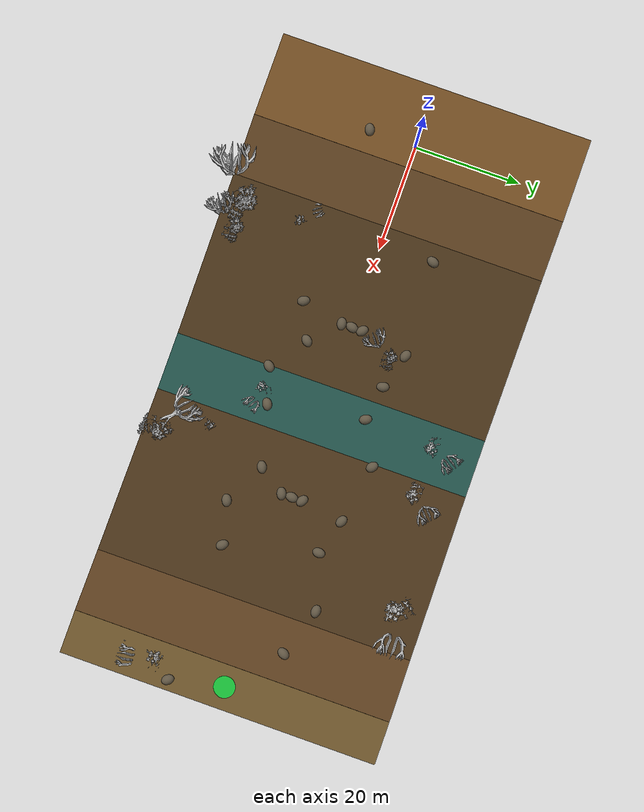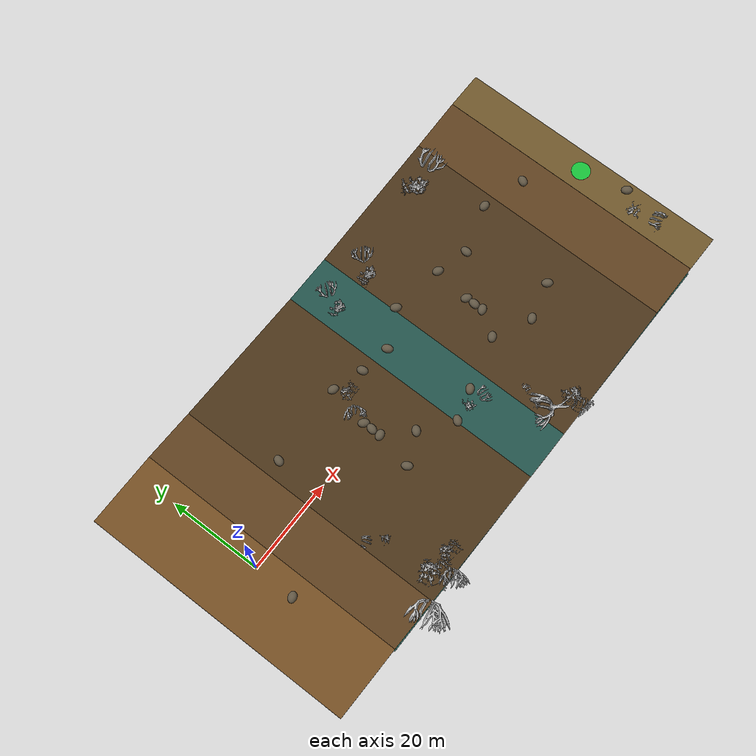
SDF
<sdf version="1.10">
 <world name="tidal_corridor_5deg">
  <scene>
   <ambient>0.68 0.72 0.66 1</ambient>
   <background>0.52 0.72 0.90 1</background>
   <sky>
    <time>9.5</time>
    <sunrise>6.0</sunrise>
    <sunset>18.5</sunset>
    <clouds>
     <speed>0.15</speed>
     <direction>0.8</direction>
     <humidity>0.55</humidity>
     <mean_size>0.45</mean_size>
     <ambient>0.82 0.86 0.90 1</ambient>
    </clouds>
   </sky>
   <shadows>true</shadows>
  </scene>
  <light type="directional" name="sun">
   <pose>-20 -20 30 0.45 -0.35 -0.65</pose>
   <diffuse>1.0 0.94 0.78 1</diffuse>
   <specular>0.35 0.35 0.30 1</specular>
   <direction>0.25 0.35 -0.90</direction>
  </light>
  <physics name="2ms" type="dart">
   <max_step_size>0.002</max_step_size>
   <real_time_factor>1.0</real_time_factor>
   <dart><collision_detector>bullet</collision_detector></dart>
  </physics>
  <gravity>0 0 -9.81</gravity>
  <spherical_coordinates>
   <surface_model>EARTH_WGS84</surface_model>
   <latitude_deg>1.4466</latitude_deg>
   <longitude_deg>103.7300</longitude_deg>
   <elevation>0</elevation>
   <heading_deg>0</heading_deg>
  </spherical_coordinates>
  <plugin filename="gz-sim-physics-system" name="gz::sim::systems::Physics"/>
  <plugin filename="gz-sim-user-commands-system" name="gz::sim::systems::UserCommands"/>
  <plugin filename="gz-sim-scene-broadcaster-system" name="gz::sim::systems::SceneBroadcaster"/>
  <plugin filename="gz-sim-imu-system" name="gz::sim::systems::Imu"/>
  <plugin filename="gz-sim-navsat-system" name="gz::sim::systems::NavSat"/>
  <plugin filename="gz-sim-sensors-system" name="gz::sim::systems::Sensors">
   <render_engine>ogre2</render_engine>
  </plugin>
  <plugin filename="tidal_vehicle_plugins" name="hover::TerrainZones">
   <ground_height>-3.0</ground_height>
   <zone><name>muddy_valley</name><type>MUD</type><min>7.7320508 -30</min><max>96.2679492 30</max></zone>
   <zone>
    <name>tidal_channel</name>
    <type>WATER</type>
    <min>4 -30</min>
    <max>100 30</max>
    <level>-2.80</level>
    <rise>2.80</rise>
    <rise_start>0</rise_start>
    <rise_duration>180.0</rise_duration>
   </zone>
  </plugin>
  <include><uri>model://terrain_demo_5deg</uri><name>demo_terrain_5deg</name></include>
  <include>
   <uri>model://mangrove_03_10m</uri>
   <name>mangrove_03</name>
   <pose>18.824 -19 -1.346 0 0 2.30</pose>
  </include>
  <include>
   <uri>model://mangrove_01_7m</uri>
   <name>mangrove_11</name>
   <pose>54.588 -16 -3.116 0 0 2.80</pose>
  </include>
  <include>
   <uri>model://mangrove_02_8m</uri>
   <name>mangrove_12</name>
   <pose>57.941 17 -2.922 0 0 5.80</pose>
  </include>
  <include>
   <uri>model://mangrove_05_13m</uri>
   <name>mangrove_15</name>
   <pose>72.471 -18 -2.081 0 0 0.90</pose>
  </include>
  <include>
   <uri>model://mangrove_07_15m</uri>
   <name>mangrove_17</name>
   <pose>14.353 -13 -1.056 0 0 2.00</pose>
  </include>
  <include>
   <uri>model://mangrove_08_12m</uri>
   <name>mangrove_18</name>
   <pose>81.412 13 -1.564 0 0 4.80</pose>
  </include>
  <include>
   <uri>model://mangrove_01_7m</uri>
   <name>mangrove_20</name>
   <pose>25.000 -12 -1.704 0 0 0.65</pose>
  </include>
  <include>
   <uri>model://mangrove_02_8m</uri>
   <name>mangrove_21</name>
   <pose>32.000 14 -2.109 0 0 2.45</pose>
  </include>
  <include>
   <uri>model://mangrove_01_7m</uri>
   <name>mangrove_22</name>
   <pose>48.000 -18 -3.034 0 0 4.35</pose>
  </include>
  <include>
   <uri>model://mangrove_02_8m</uri>
   <name>mangrove_23</name>
   <pose>66.000 15 -2.456 0 0 5.55</pose>
  </include>
  <include>
   <uri>model://mangrove_03_10m</uri>
   <name>mangrove_24</name>
   <pose>94.000 -14 -0.675 0 0 3.25</pose>
  </include>
  <include><uri>model://rock_imported</uri><name>rock_01</name><pose>-0.176 -9 -0.150 0 0 0.35</pose></include>
  <include><uri>model://rock_imported</uri><name>rock_02</name><pose>18.824 10 -1.346 0 0 1.20</pose></include>
  <include><uri>model://rock_imported</uri><name>rock_03</name><pose>33.353 -10 -2.187 0 0 2.10</pose></include>
  <include><uri>model://rock_imported</uri><name>rock_04</name><pose>36.706 11 -2.381 0 0 2.75</pose></include>
  <include><uri>model://rock_imported</uri><name>rock_05</name><pose>40.059 -7 -2.575 0 0 0.80</pose></include>
  <include><uri>model://rock_imported</uri><name>rock_06</name><pose>43.412 9 -2.769 0 0 1.85</pose></include>
  <include><uri>model://rock_imported</uri><name>rock_07</name><pose>46.765 -12 -2.963 0 0 4.00</pose></include>
  <include><uri>model://rock_imported</uri><name>rock_08</name><pose>50.118 8 -3.150 0 0 5.20</pose></include>
  <include><uri>model://rock_imported</uri><name>rock_09</name><pose>53.471 -10 -3.150 0 0 0.50</pose></include>
  <include><uri>model://rock_imported</uri><name>rock_10</name><pose>57.941 12 -2.922 0 0 2.40</pose></include>
  <include><uri>model://rock_imported</uri><name>rock_11</name><pose>64.647 -7 -2.534 0 0 3.60</pose></include>
  <include><uri>model://rock_imported</uri><name>rock_12</name><pose>69.118 10 -2.275 0 0 5.80</pose></include>
  <include>
   <uri>model://rock_imported</uri>
   <name>rock_left_01</name>
   <pose>72.471 -11 -2.081 0 0 0.40</pose>
  </include>
  <include>
   <uri>model://rock_imported</uri>
   <name>rock_left_02</name>
   <pose>75.824 8 -1.887 0 0 1.50</pose>
  </include>
  <include>
   <uri>model://rock_imported</uri>
   <name>rock_left_03</name>
   <pose>80.294 -9 -1.629 0 0 2.30</pose>
  </include>
  <include>
   <uri>model://rock_imported</uri>
   <name>rock_left_04</name>
   <pose>85.882 11 -1.306 0 0 3.10</pose>
  </include>
  <include>
   <uri>model://rock_imported</uri>
   <name>rock_left_05</name>
   <pose>94.824 8 -0.603 0 0 4.20</pose>
  </include>
  <include>
   <uri>model://rock_imported</uri>
   <name>rock_left_06</name>
   <pose>106.000 -10 -0.150 0 0 5.40</pose>
  </include>
  <include>
   <uri>model://rock_imported</uri>
   <name>rock_route_a_01</name>
   <pose>35.000 -2 -2.282 0 0 0.20</pose>
  </include>
  <include>
   <uri>model://rock_imported</uri>
   <name>rock_route_a_02</name>
   <pose>35.000 0 -2.282 0 0 1.30</pose>
  </include>
  <include>
   <uri>model://rock_imported</uri>
   <name>rock_route_a_03</name>
   <pose>35.000 2 -2.282 0 0 2.40</pose>
  </include>
  <include>
   <uri>model://rock_imported</uri>
   <name>rock_route_b_01</name>
   <pose>68.000 -2 -2.340 0 0 3.50</pose>
  </include>
  <include>
   <uri>model://rock_imported</uri>
   <name>rock_route_b_02</name>
   <pose>68.000 0 -2.340 0 0 4.60</pose>
  </include>
  <include>
   <uri>model://rock_imported</uri>
   <name>rock_route_b_03</name>
   <pose>68.000 2 -2.340 0 0 5.70</pose>
  </include>
  <model name="delivery_zone">
   <static>true</static>
   <pose>104 0 0.02 0 0 0</pose>
   <link name="marker_link">
    <visual name="landing_pad">
     <geometry><cylinder><radius>2.0</radius><length>0.04</length></cylinder></geometry>
     <material>
      <ambient>0.05 0.35 0.12 1</ambient>
      <diffuse>0.08 0.70 0.20 1</diffuse>
      <emissive>0.02 0.15 0.04 1</emissive>
     </material>
    </visual>
   </link>
  </model>
  <model name="coastal_water">
   <pose>52 0 -2.80 0 0 0</pose>
   <static>false</static>
   <link name="water_link">
    <gravity>false</gravity>
    <visual name="rising_water_surface">
     <pose>0 0 -0.04 0 0 0</pose>
     <geometry><box><size>96 60 0.08</size></box></geometry>
     <material>
      <ambient>0.04 0.12 0.11 1</ambient>
      <diffuse>0.12 0.30 0.27 1</diffuse>
      <specular>0.20 0.32 0.28 1</specular>
      <pbr>
       <metal>
        <albedo_map>model://terrain/materials/tidal_water.png</albedo_map>
        <roughness>0.18</roughness>
        <metalness>0.0</metalness>
       </metal>
      </pbr>
     </material>
    </visual>
   </link>
   <plugin filename="libtide_visual_system.so" name="tidal_vehicle_simulation::TideVisualSystem">
    <initial_level_m>-2.80</initial_level_m>
    <rise_m>2.80</rise_m>
    <duration_s>180.0</duration_s>
   </plugin>
  </model>
 </world>
</sdf>

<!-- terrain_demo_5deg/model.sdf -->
<sdf version="1.10">
  <model name="terrain_demo_5deg">
    <static>true</static>

    <link name="demo_ground_link">
      <collision name="home_plateau_collision">
        <pose>-4 0 -0.10 0 0 0</pose>
        <geometry><box><size>16 60 0.20</size></box></geometry>
        <surface><friction><ode><mu>0.8</mu><mu2>0.8</mu2></ode></friction></surface>
      </collision>
      <collision name="home_slope_5deg_collision">
        <pose>9.7150 0 -0.5996 0 0.087266 0</pose>
        <geometry><box><size>11.4737 60 0.20</size></box></geometry>
        <surface><friction><ode><mu>0.65</mu><mu2>0.65</mu2></ode></friction></surface>
      </collision>
      <collision name="lower_home_slope_collision">
        <pose>32.7150 0 -2.0998 0 0.057789 0</pose>
        <geometry><box><size>34.6279 60 0.20</size></box></geometry>
        <surface><friction><ode><mu>0.5</mu><mu2>0.5</mu2></ode></friction></surface>
      </collision>
      <collision name="centre_floor_collision">
        <pose>52 0 -3.10 0 0 0</pose>
        <geometry><box><size>4 60 0.20</size></box></geometry>
        <surface><friction><ode><mu>0.45</mu><mu2>0.45</mu2></ode></friction></surface>
      </collision>
      <collision name="lower_delivery_slope_collision">
        <pose>71.2850 0 -2.0998 0 -0.057789 0</pose>
        <geometry><box><size>34.6279 60 0.20</size></box></geometry>
        <surface><friction><ode><mu>0.5</mu><mu2>0.5</mu2></ode></friction></surface>
      </collision>
      <collision name="delivery_slope_5deg_collision">
        <pose>94.2850 0 -0.5996 0 -0.087266 0</pose>
        <geometry><box><size>11.4737 60 0.20</size></box></geometry>
        <surface><friction><ode><mu>0.65</mu><mu2>0.65</mu2></ode></friction></surface>
      </collision>
      <collision name="delivery_plateau_collision">
        <pose>104 0 -0.10 0 0 0</pose>
        <geometry><box><size>8 60 0.20</size></box></geometry>
        <surface><friction><ode><mu>0.8</mu><mu2>0.8</mu2></ode></friction></surface>
      </collision>
    </link>
    <link name="terrain_visual_link">
      <visual name="home_plateau_visual"><pose>-4 0 -0.10 0 0 0</pose><geometry><box><size>16 60 0.20</size></box></geometry><material><ambient>0.24 0.16 0.08 1</ambient><diffuse>0.42 0.28 0.12 1</diffuse></material></visual>
      <visual name="home_slope_5deg_visual"><pose>9.7150 0 -0.5996 0 0.087266 0</pose><geometry><box><size>11.4737 60 0.20</size></box></geometry><material><ambient>0.19 0.13 0.06 1</ambient><diffuse>0.34 0.23 0.11 1</diffuse></material></visual>
      <visual name="lower_home_slope_visual"><pose>32.7150 0 -2.0998 0 0.057789 0</pose><geometry><box><size>34.6279 60 0.20</size></box></geometry><material><ambient>0.14 0.10 0.05 1</ambient><diffuse>0.27 0.19 0.09 1</diffuse></material></visual>
      <visual name="centre_floor_visual"><pose>52 0 -3.10 0 0 0</pose><geometry><box><size>4 60 0.20</size></box></geometry><material><ambient>0.10 0.08 0.04 1</ambient><diffuse>0.20 0.15 0.08 1</diffuse></material></visual>
      <visual name="lower_delivery_slope_visual"><pose>71.2850 0 -2.0998 0 -0.057789 0</pose><geometry><box><size>34.6279 60 0.20</size></box></geometry><material><ambient>0.14 0.10 0.05 1</ambient><diffuse>0.27 0.19 0.09 1</diffuse></material></visual>
      <visual name="delivery_slope_5deg_visual"><pose>94.2850 0 -0.5996 0 -0.087266 0</pose><geometry><box><size>11.4737 60 0.20</size></box></geometry><material><ambient>0.19 0.13 0.06 1</ambient><diffuse>0.34 0.23 0.11 1</diffuse></material></visual>
      <visual name="delivery_plateau_visual"><pose>104 0 -0.10 0 0 0</pose><geometry><box><size>8 60 0.20</size></box></geometry><material><ambient>0.22 0.16 0.07 1</ambient><diffuse>0.40 0.31 0.15 1</diffuse></material></visual>
    </link>
  </model>
</sdf>

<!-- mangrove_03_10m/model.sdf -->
<sdf version="1.10">
  <model name="mangrove_03_10m">
    <pose>0 0 0 0 0 0</pose>
    <static>true</static>
    <link name="visual_only_link">
      <!-- Terrain at (14, 7) is approximately 0.03 m above world zero. -->
      <pose>-9.975 6.510 -0.20 1.5708 0 0</pose>
      <visual name="imported_mangrove_visual"><geometry><mesh><uri>model://mangrove_imported/meshes/Mangrovetree.glb</uri><scale>3.5 3.5 3.5</scale></mesh></geometry></visual>
    </link>
    <!-- The converted GLB mesh is the authoritative visual and collision geometry. -->
    <!-- A mesh collision is used so Gazebo physics and LiDAR can detect the tree shape. -->
    <link name="glb_collision_link">
      <pose>0 0 0.625 0 0 0</pose>
      <collision name="glb_mesh_collision">
        <geometry><cylinder><radius>0.95</radius><length>4.0</length></cylinder></geometry>
      </collision>
    </link>
  </model>
</sdf>

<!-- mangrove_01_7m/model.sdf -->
<sdf version="1.10">
  <model name="mangrove_01_7m">
    <pose>0 0 0 0 0 0</pose>
    <static>true</static>
    <link name="visual_only_link">
      <!-- Terrain at (14, 7) is approximately 0.03 m above world zero. -->
      <pose>-7.125 4.650 -0.20 1.5708 0 0</pose>
      <visual name="imported_mangrove_visual"><geometry><mesh><uri>model://mangrove_imported/meshes/Mangrovetree.glb</uri><scale>2.5 2.5 2.5</scale></mesh></geometry></visual>
    </link>
    <!-- The converted GLB mesh is the authoritative visual and collision geometry. -->
    <!-- A mesh collision is used so Gazebo physics and LiDAR can detect the tree shape. -->
    <link name="glb_collision_link">
      <pose>0 0 0.375 0 0 0</pose>
      <collision name="glb_mesh_collision">
        <geometry><cylinder><radius>0.75</radius><length>3.5</length></cylinder></geometry>
      </collision>
    </link>
  </model>
</sdf>

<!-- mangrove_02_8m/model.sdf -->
<sdf version="1.10">
  <model name="mangrove_02_8m">
    <pose>0 0 0 0 0 0</pose>
    <static>true</static>
    <link name="visual_only_link">
      <!-- Terrain at (14, 7) is approximately 0.03 m above world zero. -->
      <pose>-8.550 5.580 -0.20 1.5708 0 0</pose>
      <visual name="imported_mangrove_visual"><geometry><mesh><uri>model://mangrove_imported/meshes/Mangrovetree.glb</uri><scale>3.0 3.0 3.0</scale></mesh></geometry></visual>
    </link>
    <!-- The converted GLB mesh is the authoritative visual and collision geometry. -->
    <!-- A mesh collision is used so Gazebo physics and LiDAR can detect the tree shape. -->
    <link name="glb_collision_link">
      <pose>0 0 0.500 0 0 0</pose>
      <collision name="glb_mesh_collision">
        <geometry><cylinder><radius>0.85</radius><length>3.7</length></cylinder></geometry>
      </collision>
    </link>
  </model>
</sdf>

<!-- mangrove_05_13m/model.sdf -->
<sdf version="1.10">
  <model name="mangrove_05_13m">
    <pose>0 0 0 0 0 0</pose>
    <static>true</static>
    <link name="visual_only_link">
      <!-- Terrain at (14, 7) is approximately 0.03 m above world zero. -->
      <pose>-12.825 8.370 -0.20 1.5708 0 0</pose>
      <visual name="imported_mangrove_visual"><geometry><mesh><uri>model://mangrove_imported/meshes/Mangrovetree.glb</uri><scale>4.5 4.5 4.5</scale></mesh></geometry></visual>
    </link>
    <!-- The converted GLB mesh is the authoritative visual and collision geometry. -->
    <!-- A mesh collision is used so Gazebo physics and LiDAR can detect the tree shape. -->
    <link name="glb_collision_link">
      <pose>0 0 0.875 0 0 0</pose>
      <collision name="glb_mesh_collision">
        <geometry><cylinder><radius>1.1</radius><length>4.5</length></cylinder></geometry>
      </collision>
    </link>
  </model>
</sdf>

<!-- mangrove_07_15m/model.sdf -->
<sdf version="1.10">
  <model name="mangrove_07_15m">
    <pose>0 0 0 0 0 0</pose>
    <static>true</static>
    <link name="visual_only_link">
      <!-- Terrain at (14, 7) is approximately 0.03 m above world zero. -->
      <pose>-15.247 9.951 -0.20 1.5708 0 0</pose>
      <visual name="imported_mangrove_visual"><geometry><mesh><uri>model://mangrove_imported/meshes/Mangrovetree.glb</uri><scale>5.35 5.35 5.35</scale></mesh></geometry></visual>
    </link>
    <!-- The converted GLB mesh is the authoritative visual and collision geometry. -->
    <!-- A mesh collision is used so Gazebo physics and LiDAR can detect the tree shape. -->
    <link name="glb_collision_link">
      <pose>0 0 1.088 0 0 0</pose>
      <collision name="glb_mesh_collision">
        <geometry><cylinder><radius>1.3</radius><length>5.0</length></cylinder></geometry>
      </collision>
    </link>
  </model>
</sdf>

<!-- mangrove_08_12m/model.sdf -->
<sdf version="1.10">
  <model name="mangrove_08_12m">
    <pose>0 0 0 0 0 0</pose>
    <static>true</static>
    <link name="visual_only_link">
      <!-- Terrain at (14, 7) is approximately 0.03 m above world zero. -->
      <pose>-12.255 7.998 -0.20 1.5708 0 0</pose>
      <visual name="imported_mangrove_visual"><geometry><mesh><uri>model://mangrove_imported/meshes/Mangrovetree.glb</uri><scale>4.3 4.3 4.3</scale></mesh></geometry></visual>
    </link>
    <!-- The converted GLB mesh is the authoritative visual and collision geometry. -->
    <!-- A mesh collision is used so Gazebo physics and LiDAR can detect the tree shape. -->
    <link name="glb_collision_link">
      <pose>0 0 0.825 0 0 0</pose>
      <collision name="glb_mesh_collision">
        <geometry><cylinder><radius>1.05</radius><length>4.4</length></cylinder></geometry>
      </collision>
    </link>
  </model>
</sdf>

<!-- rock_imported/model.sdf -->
<sdf version="1.10">
  <model name="rock_imported">
    <pose>0 0 0 0 0 0</pose>
    <static>true</static>
    <link name="rock_visual_link">
      <!-- Lightweight visual proxy; instance yaw still gives the scattered
           rocks varied orientations without rendering the 326k-triangle GLB. -->
      <pose>0 0 0.75 0 0 0</pose>
      <visual name="rock_ellipsoid_visual">
        <geometry><ellipsoid><radii>1.2 0.9 0.7</radii></ellipsoid></geometry>
        <material>
          <ambient>0.20 0.18 0.14 1</ambient>
          <diffuse>0.36 0.32 0.25 1</diffuse>
          <specular>0.03 0.03 0.025 1</specular>
          <pbr><metal><roughness>0.95</roughness><metalness>0.0</metalness></metal></pbr>
        </material>
      </visual>
    </link>
    <link name="rock_collision_link">
      <!-- Unchanged collision keeps physics and LiDAR behavior stable. -->
      <pose>0 0 0.75 0 0 0</pose>
      <collision name="rock_collision">
        <geometry><sphere><radius>1.0</radius></sphere></geometry>
      </collision>
    </link>
  </model>
</sdf>
